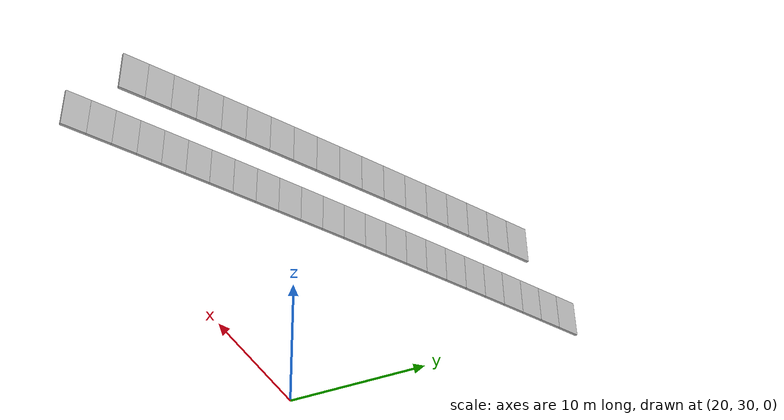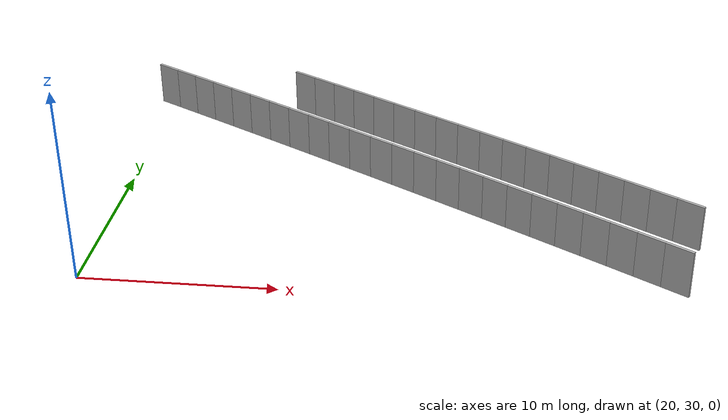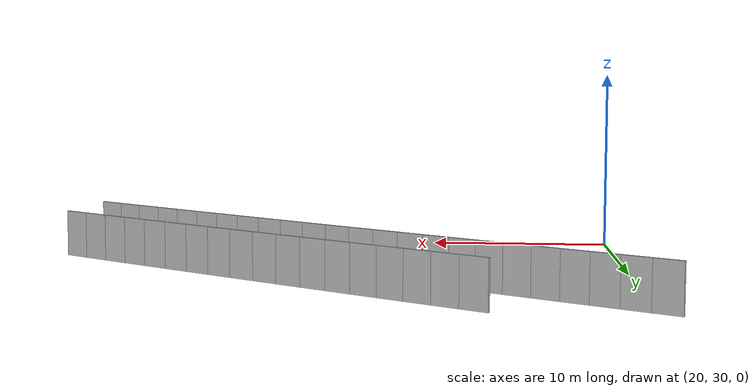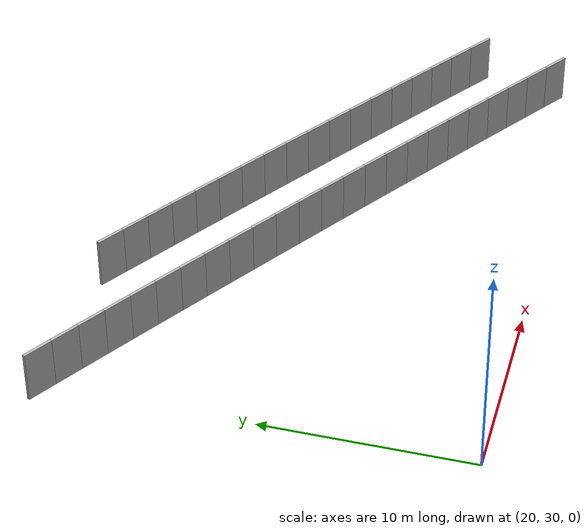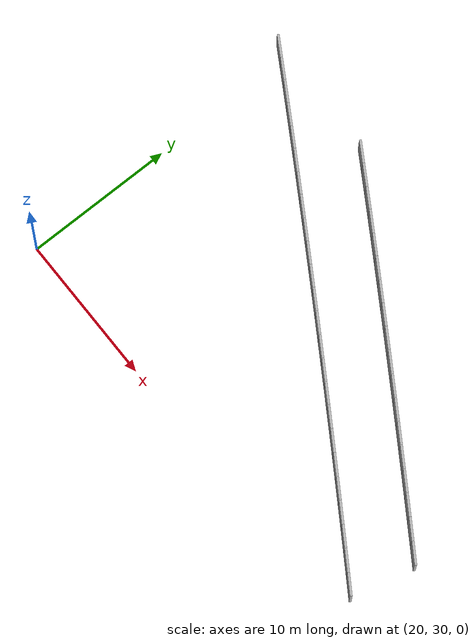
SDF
<?xml version="1.0" ?>
<sdf version="1.6">
  <model name="sps_3643">
    <pose frame="">0 0 0 0 -0 0</pose>
    <static>1</static>
    <self_collide>0</self_collide>
    <allow_auto_disable>0</allow_auto_disable>
    <link name="Wall10554">
      <kinematic>0</kinematic>
      <gravity>1</gravity>
      <self_collide>0</self_collide>
      <collision name="collision">
        <geometry>
          <box>
            <size>1.49652 0.15 2.5</size>
          </box>
        </geometry>
        <pose frame="">0 0 0 0 -0 0</pose>
      </collision>
      <visual name="visual">
        <geometry>
          <box>
            <size>1.49652 0.15 2.5</size>
          </box>
        </geometry>
        <pose frame="">0 0 0 0 -0 0</pose>
        <cast_shadows>1</cast_shadows>
        <transparency>0.0</transparency>
      </visual>
      <pose frame="">48.9899 31.7455 1.25 0 -0 2.57223</pose>
    </link>
    <link name="Wall10555">
      <kinematic>0</kinematic>
      <gravity>1</gravity>
      <self_collide>0</self_collide>
      <collision name="collision">
        <geometry>
          <box>
            <size>1.49654 0.15 2.5</size>
          </box>
        </geometry>
        <pose frame="">0 0 0 0 -0 0</pose>
      </collision>
      <visual name="visual">
        <geometry>
          <box>
            <size>1.49654 0.15 2.5</size>
          </box>
        </geometry>
        <pose frame="">0 0 0 0 -0 0</pose>
        <cast_shadows>1</cast_shadows>
        <transparency>0.0</transparency>
      </visual>
      <pose frame="">47.7288 32.5514 1.25 0 -0 2.57365</pose>
    </link>
    <link name="Wall10556">
      <kinematic>0</kinematic>
      <gravity>1</gravity>
      <self_collide>0</self_collide>
      <collision name="collision">
        <geometry>
          <box>
            <size>1.49655 0.15 2.5</size>
          </box>
        </geometry>
        <pose frame="">0 0 0 0 -0 0</pose>
      </collision>
      <visual name="visual">
        <geometry>
          <box>
            <size>1.49655 0.15 2.5</size>
          </box>
        </geometry>
        <pose frame="">0 0 0 0 -0 0</pose>
        <cast_shadows>1</cast_shadows>
        <transparency>0.0</transparency>
      </visual>
      <pose frame="">46.4665 33.3553 1.25 0 -0 2.57539</pose>
    </link>
    <link name="Wall10557">
      <kinematic>0</kinematic>
      <gravity>1</gravity>
      <self_collide>0</self_collide>
      <collision name="collision">
        <geometry>
          <box>
            <size>1.49669 0.15 2.5</size>
          </box>
        </geometry>
        <pose frame="">0 0 0 0 -0 0</pose>
      </collision>
      <visual name="visual">
        <geometry>
          <box>
            <size>1.49669 0.15 2.5</size>
          </box>
        </geometry>
        <pose frame="">0 0 0 0 -0 0</pose>
        <cast_shadows>1</cast_shadows>
        <transparency>0.0</transparency>
      </visual>
      <pose frame="">45.2028 34.1571 1.25 0 -0 2.57699</pose>
    </link>
    <link name="Wall10558">
      <kinematic>0</kinematic>
      <gravity>1</gravity>
      <self_collide>0</self_collide>
      <collision name="collision">
        <geometry>
          <box>
            <size>1.4964 0.15 2.5</size>
          </box>
        </geometry>
        <pose frame="">0 0 0 0 -0 0</pose>
      </collision>
      <visual name="visual">
        <geometry>
          <box>
            <size>1.4964 0.15 2.5</size>
          </box>
        </geometry>
        <pose frame="">0 0 0 0 -0 0</pose>
        <cast_shadows>1</cast_shadows>
        <transparency>0.0</transparency>
      </visual>
      <pose frame="">43.9379 34.9569 1.25 0 -0 2.57851</pose>
    </link>
    <link name="Wall10559">
      <kinematic>0</kinematic>
      <gravity>1</gravity>
      <self_collide>0</self_collide>
      <collision name="collision">
        <geometry>
          <box>
            <size>1.49655 0.15 2.5</size>
          </box>
        </geometry>
        <pose frame="">0 0 0 0 -0 0</pose>
      </collision>
      <visual name="visual">
        <geometry>
          <box>
            <size>1.49655 0.15 2.5</size>
          </box>
        </geometry>
        <pose frame="">0 0 0 0 -0 0</pose>
        <cast_shadows>1</cast_shadows>
        <transparency>0.0</transparency>
      </visual>
      <pose frame="">42.6719 35.7547 1.25 0 -0 2.58012</pose>
    </link>
    <link name="Wall10560">
      <kinematic>0</kinematic>
      <gravity>1</gravity>
      <self_collide>0</self_collide>
      <collision name="collision">
        <geometry>
          <box>
            <size>1.49645 0.15 2.5</size>
          </box>
        </geometry>
        <pose frame="">0 0 0 0 -0 0</pose>
      </collision>
      <visual name="visual">
        <geometry>
          <box>
            <size>1.49645 0.15 2.5</size>
          </box>
        </geometry>
        <pose frame="">0 0 0 0 -0 0</pose>
        <cast_shadows>1</cast_shadows>
        <transparency>0.0</transparency>
      </visual>
      <pose frame="">41.4046 36.5506 1.25 0 -0 2.58152</pose>
    </link>
    <link name="Wall10561">
      <kinematic>0</kinematic>
      <gravity>1</gravity>
      <self_collide>0</self_collide>
      <collision name="collision">
        <geometry>
          <box>
            <size>1.49666 0.15 2.5</size>
          </box>
        </geometry>
        <pose frame="">0 0 0 0 -0 0</pose>
      </collision>
      <visual name="visual">
        <geometry>
          <box>
            <size>1.49666 0.15 2.5</size>
          </box>
        </geometry>
        <pose frame="">0 0 0 0 -0 0</pose>
        <cast_shadows>1</cast_shadows>
        <transparency>0.0</transparency>
      </visual>
      <pose frame="">40.1359 37.3445 1.25 0 -0 2.5833</pose>
    </link>
    <link name="Wall10562">
      <kinematic>0</kinematic>
      <gravity>1</gravity>
      <self_collide>0</self_collide>
      <collision name="collision">
        <geometry>
          <box>
            <size>1.4964 0.15 2.5</size>
          </box>
        </geometry>
        <pose frame="">0 0 0 0 -0 0</pose>
      </collision>
      <visual name="visual">
        <geometry>
          <box>
            <size>1.4964 0.15 2.5</size>
          </box>
        </geometry>
        <pose frame="">0 0 0 0 -0 0</pose>
        <cast_shadows>1</cast_shadows>
        <transparency>0.0</transparency>
      </visual>
      <pose frame="">38.8661 38.1363 1.25 0 -0 2.58482</pose>
    </link>
    <link name="Wall10563">
      <kinematic>0</kinematic>
      <gravity>1</gravity>
      <self_collide>0</self_collide>
      <collision name="collision">
        <geometry>
          <box>
            <size>1.49643 0.15 2.5</size>
          </box>
        </geometry>
        <pose frame="">0 0 0 0 -0 0</pose>
      </collision>
      <visual name="visual">
        <geometry>
          <box>
            <size>1.49643 0.15 2.5</size>
          </box>
        </geometry>
        <pose frame="">0 0 0 0 -0 0</pose>
        <cast_shadows>1</cast_shadows>
        <transparency>0.0</transparency>
      </visual>
      <pose frame="">37.595 38.926 1.25 0 -0 2.58656</pose>
    </link>
    <link name="Wall10564">
      <kinematic>0</kinematic>
      <gravity>1</gravity>
      <self_collide>0</self_collide>
      <collision name="collision">
        <geometry>
          <box>
            <size>1.49669 0.15 2.5</size>
          </box>
        </geometry>
        <pose frame="">0 0 0 0 -0 0</pose>
      </collision>
      <visual name="visual">
        <geometry>
          <box>
            <size>1.49669 0.15 2.5</size>
          </box>
        </geometry>
        <pose frame="">0 0 0 0 -0 0</pose>
        <cast_shadows>1</cast_shadows>
        <transparency>0.0</transparency>
      </visual>
      <pose frame="">36.3225 39.7137 1.25 0 -0 2.58806</pose>
    </link>
    <link name="Wall10565">
      <kinematic>0</kinematic>
      <gravity>1</gravity>
      <self_collide>0</self_collide>
      <collision name="collision">
        <geometry>
          <box>
            <size>1.49642 0.15 2.5</size>
          </box>
        </geometry>
        <pose frame="">0 0 0 0 -0 0</pose>
      </collision>
      <visual name="visual">
        <geometry>
          <box>
            <size>1.49642 0.15 2.5</size>
          </box>
        </geometry>
        <pose frame="">0 0 0 0 -0 0</pose>
        <cast_shadows>1</cast_shadows>
        <transparency>0.0</transparency>
      </visual>
      <pose frame="">35.0488 40.4994 1.25 0 -0 2.58967</pose>
    </link>
    <link name="Wall10566">
      <kinematic>0</kinematic>
      <gravity>1</gravity>
      <self_collide>0</self_collide>
      <collision name="collision">
        <geometry>
          <box>
            <size>1.49635 0.15 2.5</size>
          </box>
        </geometry>
        <pose frame="">0 0 0 0 -0 0</pose>
      </collision>
      <visual name="visual">
        <geometry>
          <box>
            <size>1.49635 0.15 2.5</size>
          </box>
        </geometry>
        <pose frame="">0 0 0 0 -0 0</pose>
        <cast_shadows>1</cast_shadows>
        <transparency>0.0</transparency>
      </visual>
      <pose frame="">33.7739 41.283 1.25 0 -0 2.59123</pose>
    </link>
    <link name="Wall10567">
      <kinematic>0</kinematic>
      <gravity>1</gravity>
      <self_collide>0</self_collide>
      <collision name="collision">
        <geometry>
          <box>
            <size>1.49663 0.15 2.5</size>
          </box>
        </geometry>
        <pose frame="">0 0 0 0 -0 0</pose>
      </collision>
      <visual name="visual">
        <geometry>
          <box>
            <size>1.49663 0.15 2.5</size>
          </box>
        </geometry>
        <pose frame="">0 0 0 0 -0 0</pose>
        <cast_shadows>1</cast_shadows>
        <transparency>0.0</transparency>
      </visual>
      <pose frame="">32.4979 42.0647 1.25 0 -0 2.59272</pose>
    </link>
    <link name="Wall10568">
      <kinematic>0</kinematic>
      <gravity>1</gravity>
      <self_collide>0</self_collide>
      <collision name="collision">
        <geometry>
          <box>
            <size>1.49652 0.15 2.5</size>
          </box>
        </geometry>
        <pose frame="">0 0 0 0 -0 0</pose>
      </collision>
      <visual name="visual">
        <geometry>
          <box>
            <size>1.49652 0.15 2.5</size>
          </box>
        </geometry>
        <pose frame="">0 0 0 0 -0 0</pose>
        <cast_shadows>1</cast_shadows>
        <transparency>0.0</transparency>
      </visual>
      <pose frame="">31.2205 42.8444 1.25 0 -0 2.5944</pose>
    </link>
    <link name="Wall10569">
      <kinematic>0</kinematic>
      <gravity>1</gravity>
      <self_collide>0</self_collide>
      <collision name="collision">
        <geometry>
          <box>
            <size>1.49659 0.15 2.5</size>
          </box>
        </geometry>
        <pose frame="">0 0 0 0 -0 0</pose>
      </collision>
      <visual name="visual">
        <geometry>
          <box>
            <size>1.49659 0.15 2.5</size>
          </box>
        </geometry>
        <pose frame="">0 0 0 0 -0 0</pose>
        <cast_shadows>1</cast_shadows>
        <transparency>0.0</transparency>
      </visual>
      <pose frame="">29.9418 43.622 1.25 0 -0 2.59605</pose>
    </link>
    <link name="Wall10570">
      <kinematic>0</kinematic>
      <gravity>1</gravity>
      <self_collide>0</self_collide>
      <collision name="collision">
        <geometry>
          <box>
            <size>1.49652 0.15 2.5</size>
          </box>
        </geometry>
        <pose frame="">0 0 0 0 -0 0</pose>
      </collision>
      <visual name="visual">
        <geometry>
          <box>
            <size>1.49652 0.15 2.5</size>
          </box>
        </geometry>
        <pose frame="">0 0 0 0 -0 0</pose>
        <cast_shadows>1</cast_shadows>
        <transparency>0.0</transparency>
      </visual>
      <pose frame="">28.6619 44.3976 1.25 0 -0 2.59755</pose>
    </link>
    <link name="Wall10571">
      <kinematic>0</kinematic>
      <gravity>1</gravity>
      <self_collide>0</self_collide>
      <collision name="collision">
        <geometry>
          <box>
            <size>1.49666 0.15 2.5</size>
          </box>
        </geometry>
        <pose frame="">0 0 0 0 -0 0</pose>
      </collision>
      <visual name="visual">
        <geometry>
          <box>
            <size>1.49666 0.15 2.5</size>
          </box>
        </geometry>
        <pose frame="">0 0 0 0 -0 0</pose>
        <cast_shadows>1</cast_shadows>
        <transparency>0.0</transparency>
      </visual>
      <pose frame="">27.3807 45.1712 1.25 0 -0 2.59913</pose>
    </link>
    <link name="Wall10572">
      <kinematic>0</kinematic>
      <gravity>1</gravity>
      <self_collide>0</self_collide>
      <collision name="collision">
        <geometry>
          <box>
            <size>1.49643 0.15 2.5</size>
          </box>
        </geometry>
        <pose frame="">0 0 0 0 -0 0</pose>
      </collision>
      <visual name="visual">
        <geometry>
          <box>
            <size>1.49643 0.15 2.5</size>
          </box>
        </geometry>
        <pose frame="">0 0 0 0 -0 0</pose>
        <cast_shadows>1</cast_shadows>
        <transparency>0.0</transparency>
      </visual>
      <pose frame="">26.0984 45.9428 1.25 0 -0 2.60066</pose>
    </link>
    <link name="Wall10573">
      <kinematic>0</kinematic>
      <gravity>1</gravity>
      <self_collide>0</self_collide>
      <collision name="collision">
        <geometry>
          <box>
            <size>1.49653 0.15 2.5</size>
          </box>
        </geometry>
        <pose frame="">0 0 0 0 -0 0</pose>
      </collision>
      <visual name="visual">
        <geometry>
          <box>
            <size>1.49653 0.15 2.5</size>
          </box>
        </geometry>
        <pose frame="">0 0 0 0 -0 0</pose>
        <cast_shadows>1</cast_shadows>
        <transparency>0.0</transparency>
      </visual>
      <pose frame="">24.815 46.7123 1.25 0 -0 2.60236</pose>
    </link>
    <link name="Wall10574">
      <kinematic>0</kinematic>
      <gravity>1</gravity>
      <self_collide>0</self_collide>
      <collision name="collision">
        <geometry>
          <box>
            <size>1.49636 0.15 2.5</size>
          </box>
        </geometry>
        <pose frame="">0 0 0 0 -0 0</pose>
      </collision>
      <visual name="visual">
        <geometry>
          <box>
            <size>1.49636 0.15 2.5</size>
          </box>
        </geometry>
        <pose frame="">0 0 0 0 -0 0</pose>
        <cast_shadows>1</cast_shadows>
        <transparency>0.0</transparency>
      </visual>
      <pose frame="">23.5303 47.4797 1.25 0 -0 2.60391</pose>
    </link>
    <link name="Wall10575">
      <kinematic>0</kinematic>
      <gravity>1</gravity>
      <self_collide>0</self_collide>
      <collision name="collision">
        <geometry>
          <box>
            <size>1.49657 0.15 2.5</size>
          </box>
        </geometry>
        <pose frame="">0 0 0 0 -0 0</pose>
      </collision>
      <visual name="visual">
        <geometry>
          <box>
            <size>1.49657 0.15 2.5</size>
          </box>
        </geometry>
        <pose frame="">0 0 0 0 -0 0</pose>
        <cast_shadows>1</cast_shadows>
        <transparency>0.0</transparency>
      </visual>
      <pose frame="">22.2443 48.2451 1.25 0 -0 2.60551</pose>
    </link>
    <link name="Wall10576">
      <kinematic>0</kinematic>
      <gravity>1</gravity>
      <self_collide>0</self_collide>
      <collision name="collision">
        <geometry>
          <box>
            <size>1.49644 0.15 2.5</size>
          </box>
        </geometry>
        <pose frame="">0 0 0 0 -0 0</pose>
      </collision>
      <visual name="visual">
        <geometry>
          <box>
            <size>1.49644 0.15 2.5</size>
          </box>
        </geometry>
        <pose frame="">0 0 0 0 -0 0</pose>
        <cast_shadows>1</cast_shadows>
        <transparency>0.0</transparency>
      </visual>
      <pose frame="">20.9571 49.0084 1.25 0 -0 2.60717</pose>
    </link>
    <link name="Wall10577">
      <kinematic>0</kinematic>
      <gravity>1</gravity>
      <self_collide>0</self_collide>
      <collision name="collision">
        <geometry>
          <box>
            <size>1.49659 0.15 2.5</size>
          </box>
        </geometry>
        <pose frame="">0 0 0 0 -0 0</pose>
      </collision>
      <visual name="visual">
        <geometry>
          <box>
            <size>1.49659 0.15 2.5</size>
          </box>
        </geometry>
        <pose frame="">0 0 0 0 -0 0</pose>
        <cast_shadows>1</cast_shadows>
        <transparency>0.0</transparency>
      </visual>
      <pose frame="">19.6688 49.7697 1.25 0 -0 2.6086</pose>
    </link>
    <link name="Wall11152">
      <kinematic>0</kinematic>
      <gravity>1</gravity>
      <self_collide>0</self_collide>
      <collision name="collision">
        <geometry>
          <box>
            <size>1.50311 0.15 2.5</size>
          </box>
        </geometry>
        <pose frame="">0 0 0 0 -0 0</pose>
      </collision>
      <visual name="visual">
        <geometry>
          <box>
            <size>1.50311 0.15 2.5</size>
          </box>
        </geometry>
        <pose frame="">0 0 0 0 -0 0</pose>
        <cast_shadows>1</cast_shadows>
        <transparency>0.0</transparency>
      </visual>
      <pose frame="">49.9549 36.0421 1.25 0 -0 2.57374</pose>
    </link>
    <link name="Wall11153">
      <kinematic>0</kinematic>
      <gravity>1</gravity>
      <self_collide>0</self_collide>
      <collision name="collision">
        <geometry>
          <box>
            <size>1.50291 0.15 2.5</size>
          </box>
        </geometry>
        <pose frame="">0 0 0 0 -0 0</pose>
      </collision>
      <visual name="visual">
        <geometry>
          <box>
            <size>1.50291 0.15 2.5</size>
          </box>
        </geometry>
        <pose frame="">0 0 0 0 -0 0</pose>
        <cast_shadows>1</cast_shadows>
        <transparency>0.0</transparency>
      </visual>
      <pose frame="">48.6871 36.8494 1.25 0 -0 2.57539</pose>
    </link>
    <link name="Wall11154">
      <kinematic>0</kinematic>
      <gravity>1</gravity>
      <self_collide>0</self_collide>
      <collision name="collision">
        <geometry>
          <box>
            <size>1.50317 0.15 2.5</size>
          </box>
        </geometry>
        <pose frame="">0 0 0 0 -0 0</pose>
      </collision>
      <visual name="visual">
        <geometry>
          <box>
            <size>1.50317 0.15 2.5</size>
          </box>
        </geometry>
        <pose frame="">0 0 0 0 -0 0</pose>
        <cast_shadows>1</cast_shadows>
        <transparency>0.0</transparency>
      </visual>
      <pose frame="">47.418 37.6547 1.25 0 -0 2.57694</pose>
    </link>
    <link name="Wall11155">
      <kinematic>0</kinematic>
      <gravity>1</gravity>
      <self_collide>0</self_collide>
      <collision name="collision">
        <geometry>
          <box>
            <size>1.50307 0.15 2.5</size>
          </box>
        </geometry>
        <pose frame="">0 0 0 0 -0 0</pose>
      </collision>
      <visual name="visual">
        <geometry>
          <box>
            <size>1.50307 0.15 2.5</size>
          </box>
        </geometry>
        <pose frame="">0 0 0 0 -0 0</pose>
        <cast_shadows>1</cast_shadows>
        <transparency>0.0</transparency>
      </visual>
      <pose frame="">46.1475 38.4581 1.25 0 -0 2.57848</pose>
    </link>
    <link name="Wall11156">
      <kinematic>0</kinematic>
      <gravity>1</gravity>
      <self_collide>0</self_collide>
      <collision name="collision">
        <geometry>
          <box>
            <size>1.50312 0.15 2.5</size>
          </box>
        </geometry>
        <pose frame="">0 0 0 0 -0 0</pose>
      </collision>
      <visual name="visual">
        <geometry>
          <box>
            <size>1.50312 0.15 2.5</size>
          </box>
        </geometry>
        <pose frame="">0 0 0 0 -0 0</pose>
        <cast_shadows>1</cast_shadows>
        <transparency>0.0</transparency>
      </visual>
      <pose frame="">44.8758 39.2594 1.25 0 -0 2.58018</pose>
    </link>
    <link name="Wall11157">
      <kinematic>0</kinematic>
      <gravity>1</gravity>
      <self_collide>0</self_collide>
      <collision name="collision">
        <geometry>
          <box>
            <size>1.50308 0.15 2.5</size>
          </box>
        </geometry>
        <pose frame="">0 0 0 0 -0 0</pose>
      </collision>
      <visual name="visual">
        <geometry>
          <box>
            <size>1.50308 0.15 2.5</size>
          </box>
        </geometry>
        <pose frame="">0 0 0 0 -0 0</pose>
        <cast_shadows>1</cast_shadows>
        <transparency>0.0</transparency>
      </visual>
      <pose frame="">43.6028 40.0586 1.25 0 -0 2.58175</pose>
    </link>
    <link name="Wall11158">
      <kinematic>0</kinematic>
      <gravity>1</gravity>
      <self_collide>0</self_collide>
      <collision name="collision">
        <geometry>
          <box>
            <size>1.503 0.15 2.5</size>
          </box>
        </geometry>
        <pose frame="">0 0 0 0 -0 0</pose>
      </collision>
      <visual name="visual">
        <geometry>
          <box>
            <size>1.503 0.15 2.5</size>
          </box>
        </geometry>
        <pose frame="">0 0 0 0 -0 0</pose>
        <cast_shadows>1</cast_shadows>
        <transparency>0.0</transparency>
      </visual>
      <pose frame="">42.3286 40.8558 1.25 0 -0 2.58329</pose>
    </link>
    <link name="Wall11159">
      <kinematic>0</kinematic>
      <gravity>1</gravity>
      <self_collide>0</self_collide>
      <collision name="collision">
        <geometry>
          <box>
            <size>1.50316 0.15 2.5</size>
          </box>
        </geometry>
        <pose frame="">0 0 0 0 -0 0</pose>
      </collision>
      <visual name="visual">
        <geometry>
          <box>
            <size>1.50316 0.15 2.5</size>
          </box>
        </geometry>
        <pose frame="">0 0 0 0 -0 0</pose>
        <cast_shadows>1</cast_shadows>
        <transparency>0.0</transparency>
      </visual>
      <pose frame="">41.0532 41.6512 1.25 0 -0 2.58465</pose>
    </link>
    <link name="Wall11160">
      <kinematic>0</kinematic>
      <gravity>1</gravity>
      <self_collide>0</self_collide>
      <collision name="collision">
        <geometry>
          <box>
            <size>1.50313 0.15 2.5</size>
          </box>
        </geometry>
        <pose frame="">0 0 0 0 -0 0</pose>
      </collision>
      <visual name="visual">
        <geometry>
          <box>
            <size>1.50313 0.15 2.5</size>
          </box>
        </geometry>
        <pose frame="">0 0 0 0 -0 0</pose>
        <cast_shadows>1</cast_shadows>
        <transparency>0.0</transparency>
      </visual>
      <pose frame="">39.7765 42.4446 1.25 0 -0 2.58646</pose>
    </link>
    <link name="Wall11161">
      <kinematic>0</kinematic>
      <gravity>1</gravity>
      <self_collide>0</self_collide>
      <collision name="collision">
        <geometry>
          <box>
            <size>1.50302 0.15 2.5</size>
          </box>
        </geometry>
        <pose frame="">0 0 0 0 -0 0</pose>
      </collision>
      <visual name="visual">
        <geometry>
          <box>
            <size>1.50302 0.15 2.5</size>
          </box>
        </geometry>
        <pose frame="">0 0 0 0 -0 0</pose>
        <cast_shadows>1</cast_shadows>
        <transparency>0.0</transparency>
      </visual>
      <pose frame="">38.4986 43.2358 1.25 0 -0 2.58804</pose>
    </link>
    <link name="Wall11162">
      <kinematic>0</kinematic>
      <gravity>1</gravity>
      <self_collide>0</self_collide>
      <collision name="collision">
        <geometry>
          <box>
            <size>1.50299 0.15 2.5</size>
          </box>
        </geometry>
        <pose frame="">0 0 0 0 -0 0</pose>
      </collision>
      <visual name="visual">
        <geometry>
          <box>
            <size>1.50299 0.15 2.5</size>
          </box>
        </geometry>
        <pose frame="">0 0 0 0 -0 0</pose>
        <cast_shadows>1</cast_shadows>
        <transparency>0.0</transparency>
      </visual>
      <pose frame="">37.2194 44.0249 1.25 0 -0 2.5897</pose>
    </link>
    <link name="Wall11163">
      <kinematic>0</kinematic>
      <gravity>1</gravity>
      <self_collide>0</self_collide>
      <collision name="collision">
        <geometry>
          <box>
            <size>1.50318 0.15 2.5</size>
          </box>
        </geometry>
        <pose frame="">0 0 0 0 -0 0</pose>
      </collision>
      <visual name="visual">
        <geometry>
          <box>
            <size>1.50318 0.15 2.5</size>
          </box>
        </geometry>
        <pose frame="">0 0 0 0 -0 0</pose>
        <cast_shadows>1</cast_shadows>
        <transparency>0.0</transparency>
      </visual>
      <pose frame="">35.9388 44.812 1.25 0 -0 2.5912</pose>
    </link>
    <link name="Wall11164">
      <kinematic>0</kinematic>
      <gravity>1</gravity>
      <self_collide>0</self_collide>
      <collision name="collision">
        <geometry>
          <box>
            <size>1.50307 0.15 2.5</size>
          </box>
        </geometry>
        <pose frame="">0 0 0 0 -0 0</pose>
      </collision>
      <visual name="visual">
        <geometry>
          <box>
            <size>1.50307 0.15 2.5</size>
          </box>
        </geometry>
        <pose frame="">0 0 0 0 -0 0</pose>
        <cast_shadows>1</cast_shadows>
        <transparency>0.0</transparency>
      </visual>
      <pose frame="">34.657 45.5971 1.25 0 -0 2.59287</pose>
    </link>
    <link name="Wall11165">
      <kinematic>0</kinematic>
      <gravity>1</gravity>
      <self_collide>0</self_collide>
      <collision name="collision">
        <geometry>
          <box>
            <size>1.50314 0.15 2.5</size>
          </box>
        </geometry>
        <pose frame="">0 0 0 0 -0 0</pose>
      </collision>
      <visual name="visual">
        <geometry>
          <box>
            <size>1.50314 0.15 2.5</size>
          </box>
        </geometry>
        <pose frame="">0 0 0 0 -0 0</pose>
        <cast_shadows>1</cast_shadows>
        <transparency>0.0</transparency>
      </visual>
      <pose frame="">33.374 46.3802 1.25 0 -0 2.59428</pose>
    </link>
    <link name="Wall11166">
      <kinematic>0</kinematic>
      <gravity>1</gravity>
      <self_collide>0</self_collide>
      <collision name="collision">
        <geometry>
          <box>
            <size>1.50301 0.15 2.5</size>
          </box>
        </geometry>
        <pose frame="">0 0 0 0 -0 0</pose>
      </collision>
      <visual name="visual">
        <geometry>
          <box>
            <size>1.50301 0.15 2.5</size>
          </box>
        </geometry>
        <pose frame="">0 0 0 0 -0 0</pose>
        <cast_shadows>1</cast_shadows>
        <transparency>0.0</transparency>
      </visual>
      <pose frame="">32.0899 47.1613 1.25 0 -0 2.59598</pose>
    </link>
    <link name="Wall11167">
      <kinematic>0</kinematic>
      <gravity>1</gravity>
      <self_collide>0</self_collide>
      <collision name="collision">
        <geometry>
          <box>
            <size>1.50304 0.15 2.5</size>
          </box>
        </geometry>
        <pose frame="">0 0 0 0 -0 0</pose>
      </collision>
      <visual name="visual">
        <geometry>
          <box>
            <size>1.50304 0.15 2.5</size>
          </box>
        </geometry>
        <pose frame="">0 0 0 0 -0 0</pose>
        <cast_shadows>1</cast_shadows>
        <transparency>0.0</transparency>
      </visual>
      <pose frame="">30.8045 47.9403 1.25 0 -0 2.59752</pose>
    </link>
    <link name="Wall11168">
      <kinematic>0</kinematic>
      <gravity>1</gravity>
      <self_collide>0</self_collide>
      <collision name="collision">
        <geometry>
          <box>
            <size>1.50311 0.15 2.5</size>
          </box>
        </geometry>
        <pose frame="">0 0 0 0 -0 0</pose>
      </collision>
      <visual name="visual">
        <geometry>
          <box>
            <size>1.50311 0.15 2.5</size>
          </box>
        </geometry>
        <pose frame="">0 0 0 0 -0 0</pose>
        <cast_shadows>1</cast_shadows>
        <transparency>0.0</transparency>
      </visual>
      <pose frame="">29.5178 48.7172 1.25 0 -0 2.59925</pose>
    </link>
    <link name="Wall11169">
      <kinematic>0</kinematic>
      <gravity>1</gravity>
      <self_collide>0</self_collide>
      <collision name="collision">
        <geometry>
          <box>
            <size>1.503 0.15 2.5</size>
          </box>
        </geometry>
        <pose frame="">0 0 0 0 -0 0</pose>
      </collision>
      <visual name="visual">
        <geometry>
          <box>
            <size>1.503 0.15 2.5</size>
          </box>
        </geometry>
        <pose frame="">0 0 0 0 -0 0</pose>
        <cast_shadows>1</cast_shadows>
        <transparency>0.0</transparency>
      </visual>
      <pose frame="">28.2299 49.4921 1.25 0 -0 2.60063</pose>
    </link>
  </model>
</sdf>
